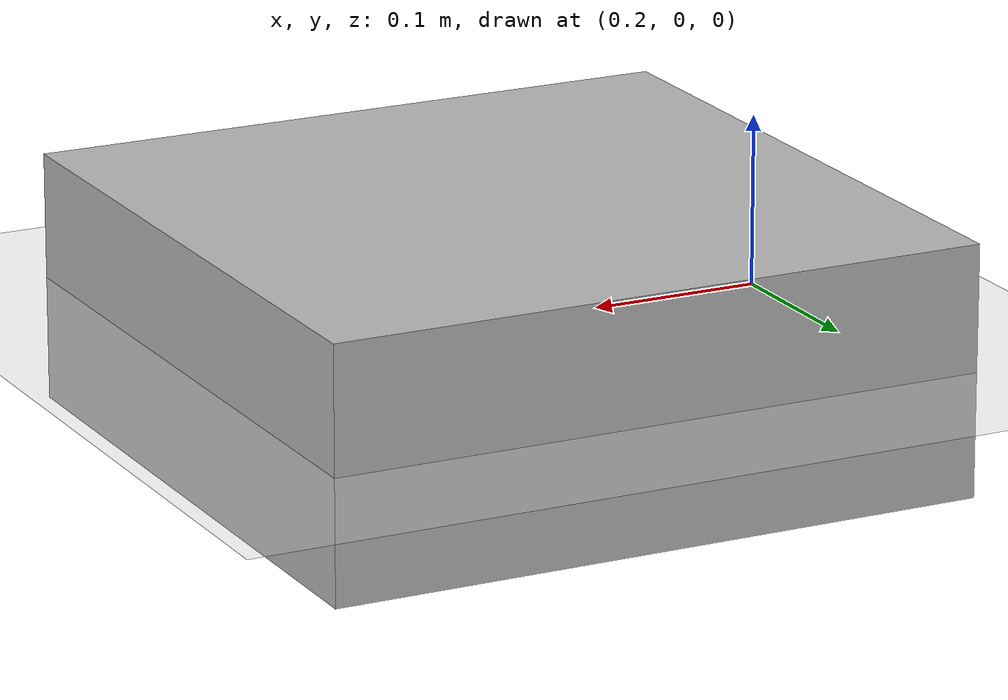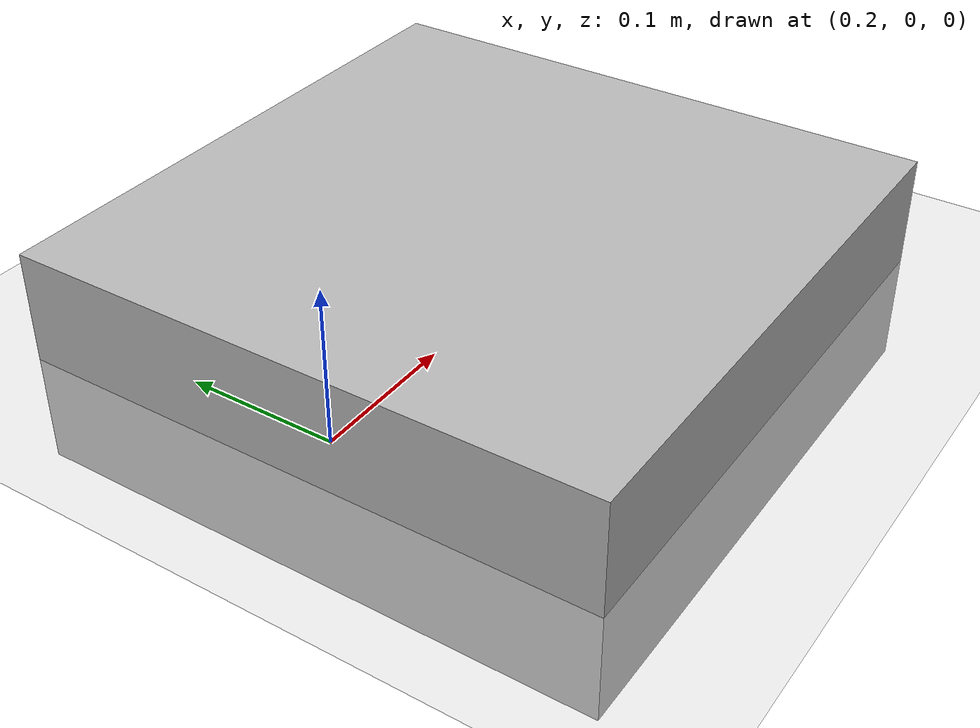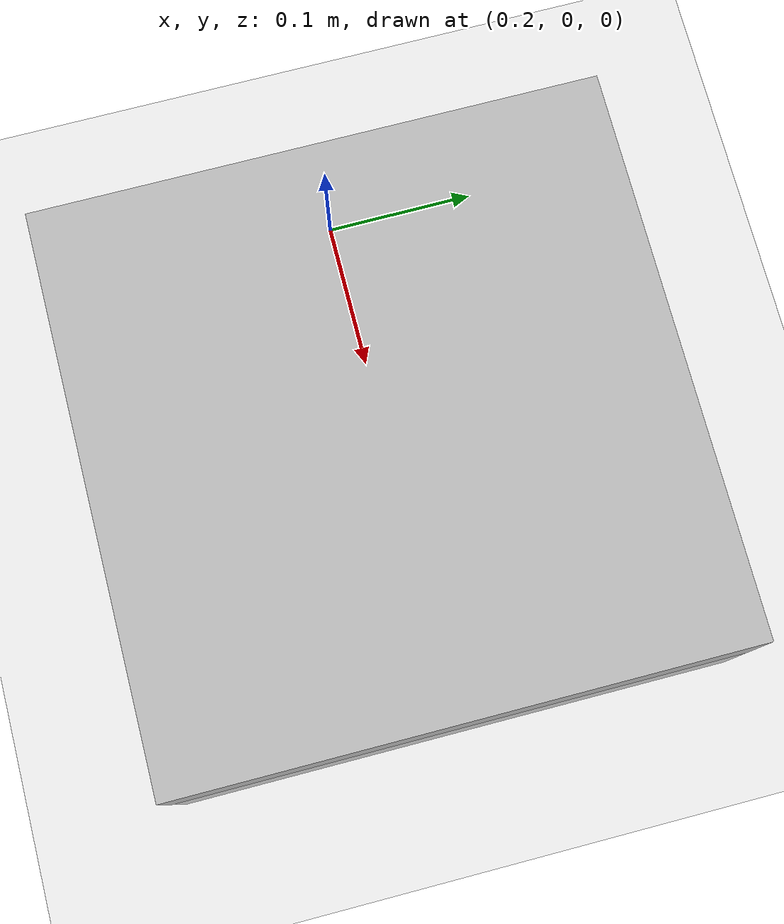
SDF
<?xml version="1.0" ?>
<sdf version="1.4">
  <world name="default">
    <physics type="ode">
      <gravity>0 0 -9.81</gravity>
      <ode>
        <solver>
	  <use_dynamic_moi_rescaling>true</use_dynamic_moi_rescaling>
          <type>quick</type>
          <iters>200</iters>
          <sor>1.0</sor>
        </solver>
        <constraints>
          <cfm>0.0</cfm>
          <erp>0.2</erp>
          <contact_max_correcting_vel>100.0</contact_max_correcting_vel>
          <contact_surface_layer>0.0</contact_surface_layer>
        </constraints>
      </ode>
      <real_time_update_rate>1000</real_time_update_rate>
      <max_step_size>0.001</max_step_size>
    </physics>

    <!--A global light source -->
    <include>
      <uri>model://sun</uri>
    </include>
    <!-- A ground plane -->
    <include>
      <uri>model://ground_plane</uri>
    </include>

    <include>
      <uri>model://cinder_block_wide</uri>
      <static>true</static>
      <pose>0.36 0 0 0 0 0</pose>
    </include>

    <plugin filename="libVRCPlugin.so" name="vrc_plugin">
      <atlas>
        <model_name>atlas</model_name>
        <pin_link>utorso</pin_link>
      </atlas>
      <drc_vehicle>
        <model_name>golf_cart</model_name>
        <seat_link>chassis</seat_link>
      </drc_vehicle>
      <drc_fire_hose>
        <fire_hose_model>fire_hose</fire_hose_model>
        <coupling_link>coupling</coupling_link>
        <standpipe_model>standpipe</standpipe_model>
        <spout_link>standpipe</spout_link>
        <thread_pitch>-1000</thread_pitch>
        <coupling_relative_pose>1.17038e-05 -0.125623 0.35 -0.0412152 -1.57078 1.61199</coupling_relative_pose>
      </drc_fire_hose>
    </plugin>
    <plugin filename="libVRCScoringPlugin.so" name="vrc_scoring" />
  </world>
</sdf>

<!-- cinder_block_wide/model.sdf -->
<sdf version="1.5">
  <model name="cinder_block_wide">
    <link name="link">
      <inertial>
        <pose>0 0  0.146 0 0 0</pose>
        <mass>5</mass>
        <!-- approximate as uniform box 0.387 x 0.387 x 0.092 m -->
        <inertia>
          <ixx>0.06814656666666667</ixx>
          <ixy>0.0000</ixy>
          <iyy>0.06814656666666667</iyy>
          <ixz>0.0000</ixz>
          <iyz>0.0000</iyz>
          <izz>0.1248075</izz>
        </inertia>
      </inertial>
      <visual name="visual">
        <geometry>

          <box>
            <size>0.387353556 0.387353556 0.146</size>
          </box>
        </geometry>
      </visual>

      <collision name="block_collision">
       <pose>0 0 0 0 0 0</pose>
        <geometry>
          <box>
            <size>0.387353556 0.387353556 0.146</size>
          </box>
        </geometry>
        <surface>
          <contact>
            <ode>
              <max_vel>0.1</max_vel>
              <min_depth>0.001</min_depth>
            </ode>
          </contact>
          <friction>
            <ode>
              <mu>1.0</mu>
              <mu2>1.0</mu2>
            </ode>
          </friction>
        </surface>

      </collision>

    </link>
  </model>
</sdf>
